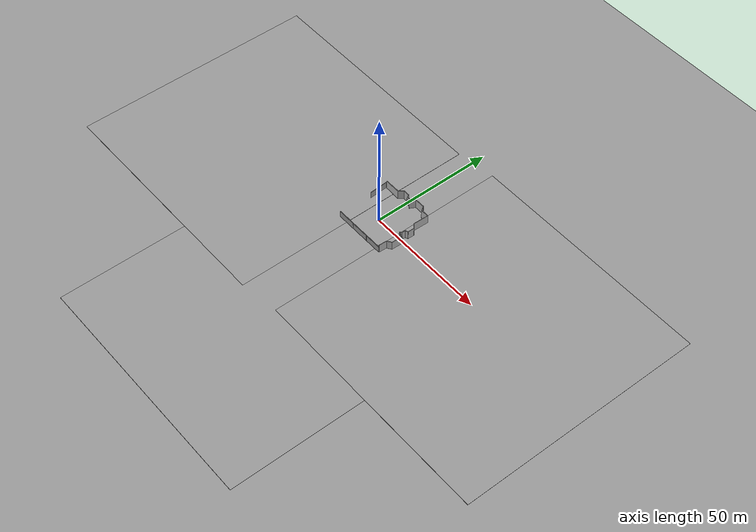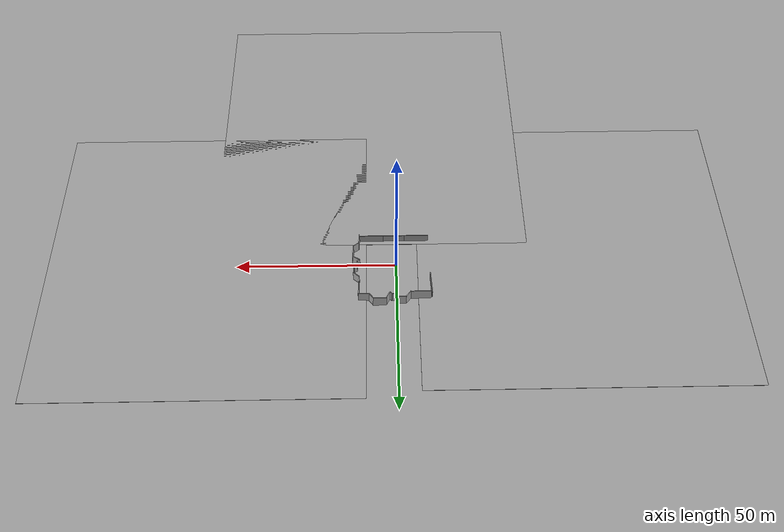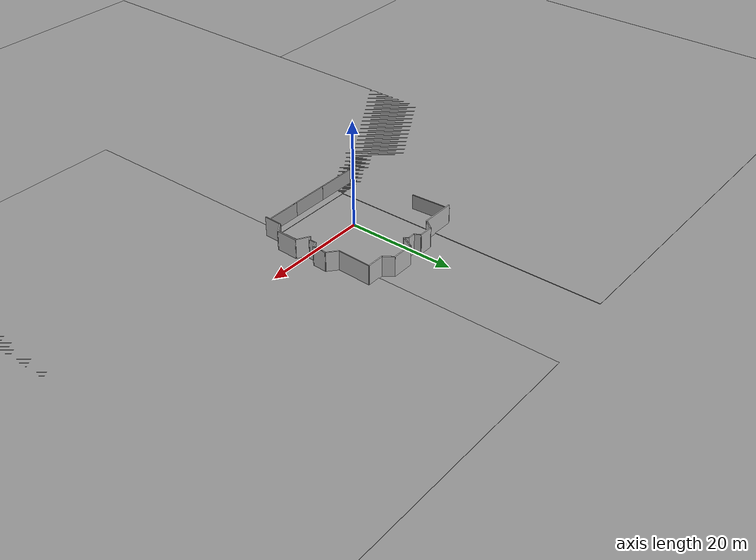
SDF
<sdf version="1.6">
 <world name="default">
  <light name="sun" type="directional">
   <pose>0 0 10 0 -0 0</pose>
   <diffuse>0.8 0.8 0.8 1</diffuse>
   <specular>0.1 0.1 0.1 1</specular>
   <attenuation>
    <range>1000</range>
    <constant>0.9</constant>
    <linear>0.01</linear>
    <quadratic>0.001</quadratic>
   </attenuation>
   <direction>-0.5 0.5 -1</direction>
  </light>
  <gravity>0 0 -9.8</gravity>
  <magnetic_field>6e-06 2.3e-05 -4.2e-05</magnetic_field>
  <atmosphere type="adiabatic"/>
  <physics name="default_physics" default="0" type="ode">
   <max_step_size>0.001</max_step_size>
   <real_time_factor>1</real_time_factor>
   <real_time_update_rate>1000</real_time_update_rate>
  </physics>
  <scene><ambient>0.4 0.4 0.4 1</ambient><background>0.7 0.7 0.7 1</background><shadows>1</shadows></scene>
  <spherical_coordinates>
   <surface_model>EARTH_WGS84</surface_model>
   <latitude_deg>0</latitude_deg>
   <longitude_deg>0</longitude_deg>
   <elevation>0</elevation>
   <heading_deg>0</heading_deg>
  </spherical_coordinates>
  <model name="ground_plane_1">
   <static>1</static>
   <link name="link">
    <collision name="collision">
     <geometry><plane><normal>0 0 1</normal><size>100 100</size></plane></geometry>
     <surface><friction><ode><mu>100</mu><mu2>50</mu2></ode></friction></surface>
    </collision>
    <visual name="visual">
     <cast_shadows>0</cast_shadows>
     <geometry><plane><normal>0 0 1</normal><size>100 100</size></plane></geometry>
     <material>
      <script><uri>file://media/materials/scripts/gazebo.material</uri><name>Gazebo/Grey</name></script>
     </material>
    </visual>
   </link>
   <pose>0.067592 59.7564 0 0 -0 0</pose>
  </model>
  <model name="deletion_wall">
   <static>1</static>
   <link name="sensing_link">
    <gravity>0</gravity>
    <sensor name="object_disposal_contact" type="contact">
     <update_rate>10</update_rate>
     <contact><collision>collision</collision><topic>__default_topic__</topic></contact>
    </sensor>
    <collision name="collision"><geometry><box><size>0.1 1 1</size></box></geometry></collision>
    <visual name="visual">
     <geometry><box><size>0.1 1 1</size></box></geometry>
     <cast_shadows>0</cast_shadows>
     <transparency>100</transparency>
    </visual>
   </link>
   <plugin name="object_disposal_plugin" filename="libObjectDisposalPlugin.so">
    <contact_sensor_name>object_disposal_contact</contact_sensor_name>
    <contact_side_normal>1 0 0</contact_side_normal>
    <disposal_pose>30 30 0 0 0 0</disposal_pose>
    <update_rate>5</update_rate>
   </plugin>
   <pose>18.7649 -0.246402 0 0 -0 0</pose>
  </model>
  <model name="sample_wall2">
   <link name="Wall_0">
    <collision name="Wall_0_Collision">
     <geometry><box><size>6.4 0.2 5</size></box></geometry>
     <pose>0 0 1.25 0 -0 0</pose>
    </collision>
    <visual name="Wall_0_Visual">
     <pose>0 0 1.25 0 -0 0</pose>
     <geometry><box><size>6.4 0.2 5</size></box></geometry>
     <material>
      <script>
       <uri>model://sample_wall2/materials/scripts</uri>
       <uri>model://sample_wall2/materials/textures</uri>
       <name>tex/wall</name>
      </script>
     </material>
    </visual>
    <pose>-6.74 -2.56 0 0 -0 0</pose>
   </link>
   <link name="Wall_1">
    <collision name="Wall_1_Collision">
     <geometry><box><size>2.44891 0.2 5</size></box></geometry>
     <pose>0 0 1.25 0 -0 0</pose>
    </collision>
    <visual name="Wall_1_Visual">
     <pose>0 0 1.25 0 -0 0</pose>
     <geometry><box><size>2.44891 0.2 5</size></box></geometry>
     <material>
      <script>
       <uri>model://sample_wall2/materials/scripts</uri>
       <uri>model://sample_wall2/materials/textures</uri>
       <name>tex/wall</name>
      </script>
     </material>
    </visual>
    <pose>-2.94 -1.68 0 0 -0 0.898833</pose>
   </link>
   <link name="Wall_12">
    <collision name="Wall_12_Collision">
     <geometry><box><size>3.4269 0.2 5</size></box></geometry>
     <pose>0 0 1.25 0 -0 0</pose>
    </collision>
    <visual name="Wall_12_Visual">
     <pose>0 0 1.25 0 -0 0</pose>
     <geometry><box><size>3.4269 0.2 5</size></box></geometry>
     <material>
      <script>
       <uri>model://sample_wall2/materials/scripts</uri>
       <uri>model://sample_wall2/materials/textures</uri>
       <name>tex/wall</name>
      </script>
     </material>
    </visual>
    <pose>10.7006 -1.98541 0 0 -0 0</pose>
   </link>
   <link name="Wall_2">
    <collision name="Wall_2_Collision">
     <geometry><box><size>2.75 0.2 5</size></box></geometry>
     <pose>0 0 1.25 0 -0 0</pose>
    </collision>
    <visual name="Wall_2_Visual">
     <pose>0 0 1.25 0 -0 0</pose>
     <geometry><box><size>2.75 0.2 5</size></box></geometry>
     <material>
      <script>
       <uri>model://sample_wall2/materials/scripts</uri>
       <uri>model://sample_wall2/materials/textures</uri>
       <name>tex/wall</name>
      </script>
     </material>
    </visual>
    <pose>-0.965 -0.8 0 0 -0 0</pose>
   </link>
   <link name="Wall_3">
    <collision name="Wall_3_Collision">
     <geometry><box><size>1.34948 0.2 5</size></box></geometry>
     <pose>0 0 1.25 0 -0 0</pose>
    </collision>
    <visual name="Wall_3_Visual">
     <pose>0 0 1.25 0 -0 0</pose>
     <geometry><box><size>1.34948 0.2 5</size></box></geometry>
     <material>
      <script>
       <uri>model://sample_wall2/materials/scripts</uri>
       <uri>model://sample_wall2/materials/textures</uri>
       <name>tex/wall</name>
      </script>
     </material>
    </visual>
    <pose>0.575 -1.31 0 0 0 -1.09159</pose>
   </link>
   <link name="Wall_4">
    <collision name="Wall_4_Collision">
     <geometry><box><size>1.53 0.2 5</size></box></geometry>
     <pose>0 0 1.25 0 -0 0</pose>
    </collision>
    <visual name="Wall_4_Visual">
     <pose>0 0 1.25 0 -0 0</pose>
     <geometry><box><size>1.53 0.2 5</size></box></geometry>
     <material>
      <script>
       <uri>model://sample_wall2/materials/scripts</uri>
       <uri>model://sample_wall2/materials/textures</uri>
       <name>tex/wall</name>
      </script>
     </material>
    </visual>
    <pose>1.505 -1.82 0 0 -0 0</pose>
   </link>
   <link name="Wall_5">
    <collision name="Wall_5_Collision">
     <geometry><box><size>1.06215 0.2 5</size></box></geometry>
     <pose>0 0 1.25 0 -0 0</pose>
    </collision>
    <visual name="Wall_5_Visual">
     <pose>0 0 1.25 0 -0 0</pose>
     <geometry><box><size>1.06215 0.2 5</size></box></geometry>
     <material>
      <script>
       <uri>model://sample_wall2/materials/scripts</uri>
       <uri>model://sample_wall2/materials/textures</uri>
       <name>tex/wall</name>
      </script>
     </material>
    </visual>
    <pose>2.435 -2.16 0 0 0 -0.908736</pose>
   </link>
   <link name="Wall_6">
    <collision name="Wall_6_Collision">
     <geometry><box><size>2.68767 0.2 5</size></box></geometry>
     <pose>0 0 1.25 0 -0 0</pose>
    </collision>
    <visual name="Wall_6_Visual">
     <pose>0 0 1.25 0 -0 0</pose>
     <geometry><box><size>2.68767 0.2 5</size></box></geometry>
     <material>
      <script>
       <uri>model://sample_wall2/materials/scripts</uri>
       <uri>model://sample_wall2/materials/textures</uri>
       <name>tex/wall</name>
      </script>
     </material>
    </visual>
    <pose>3.29 -1.405 0 0 -0 1.07658</pose>
   </link>
   <link name="Wall_8">
    <collision name="Wall_8_Collision">
     <geometry><box><size>4.15428 0.2 5</size></box></geometry>
     <pose>0 0 1.25 0 -0 0</pose>
    </collision>
    <visual name="Wall_8_Visual">
     <pose>0 0 1.25 0 -0 0</pose>
     <geometry><box><size>4.15428 0.2 5</size></box></geometry>
     <material>
      <script>
       <uri>model://sample_wall2/materials/scripts</uri>
       <uri>model://sample_wall2/materials/textures</uri>
       <name>tex/wall</name>
      </script>
     </material>
    </visual>
    <pose>5.86687 -0.292607 0 0 -0 0</pose>
   </link>
   <link name="Wall_9">
    <collision name="Wall_9_Collision">
     <geometry><box><size>2.2711 0.2 5</size></box></geometry>
     <pose>0 0 1.25 0 -0 0</pose>
    </collision>
    <visual name="Wall_9_Visual">
     <pose>0 0 1.25 0 -0 0</pose>
     <geometry><box><size>2.2711 0.2 5</size></box></geometry>
     <material>
      <script>
       <uri>model://sample_wall2/materials/scripts</uri>
       <uri>model://sample_wall2/materials/textures</uri>
       <name>tex/wall</name>
      </script>
     </material>
    </visual>
    <pose>8.45897 -1.12578 0 0 0 -0.934958</pose>
   </link>
   <static>1</static>
   <pose>-0.59993 14.848 0 0 -0 0</pose>
  </model>
  <model name="sample_wall2_0">
   <link name="Wall_0">
    <collision name="Wall_0_Collision">
     <geometry><box><size>6.4 0.2 5</size></box></geometry>
     <pose>0 0 1.25 0 -0 0</pose>
    </collision>
    <visual name="Wall_0_Visual">
     <pose>0 0 1.25 0 -0 0</pose>
     <geometry><box><size>6.4 0.2 5</size></box></geometry>
     <material>
      <script>
       <uri>model://sample_wall2/materials/scripts</uri>
       <uri>model://sample_wall2/materials/textures</uri>
       <name>tex/wall</name>
      </script>
     </material>
    </visual>
    <pose>-6.74 -2.56 0 0 -0 0</pose>
   </link>
   <link name="Wall_1">
    <collision name="Wall_1_Collision">
     <geometry><box><size>2.44891 0.2 5</size></box></geometry>
     <pose>0 0 1.25 0 -0 0</pose>
    </collision>
    <visual name="Wall_1_Visual">
     <pose>0 0 1.25 0 -0 0</pose>
     <geometry><box><size>2.44891 0.2 5</size></box></geometry>
     <material>
      <script>
       <uri>model://sample_wall2/materials/scripts</uri>
       <uri>model://sample_wall2/materials/textures</uri>
       <name>tex/wall</name>
      </script>
     </material>
    </visual>
    <pose>-2.94 -1.68 0 0 -0 0.898833</pose>
   </link>
   <link name="Wall_12">
    <collision name="Wall_12_Collision">
     <geometry><box><size>3.4269 0.2 5</size></box></geometry>
     <pose>0 0 1.25 0 -0 0</pose>
    </collision>
    <visual name="Wall_12_Visual">
     <pose>0 0 1.25 0 -0 0</pose>
     <geometry><box><size>3.4269 0.2 5</size></box></geometry>
     <material>
      <script>
       <uri>model://sample_wall2/materials/scripts</uri>
       <uri>model://sample_wall2/materials/textures</uri>
       <name>tex/wall</name>
      </script>
     </material>
    </visual>
    <pose>10.7006 -1.98541 0 0 -0 0</pose>
   </link>
   <link name="Wall_2">
    <collision name="Wall_2_Collision">
     <geometry><box><size>2.75 0.2 5</size></box></geometry>
     <pose>0 0 1.25 0 -0 0</pose>
    </collision>
    <visual name="Wall_2_Visual">
     <pose>0 0 1.25 0 -0 0</pose>
     <geometry><box><size>2.75 0.2 5</size></box></geometry>
     <material>
      <script>
       <uri>model://sample_wall2/materials/scripts</uri>
       <uri>model://sample_wall2/materials/textures</uri>
       <name>tex/wall</name>
      </script>
     </material>
    </visual>
    <pose>-0.965 -0.8 0 0 -0 0</pose>
   </link>
   <link name="Wall_3">
    <collision name="Wall_3_Collision">
     <geometry><box><size>1.34948 0.2 5</size></box></geometry>
     <pose>0 0 1.25 0 -0 0</pose>
    </collision>
    <visual name="Wall_3_Visual">
     <pose>0 0 1.25 0 -0 0</pose>
     <geometry><box><size>1.34948 0.2 5</size></box></geometry>
     <material>
      <script>
       <uri>model://sample_wall2/materials/scripts</uri>
       <uri>model://sample_wall2/materials/textures</uri>
       <name>tex/wall</name>
      </script>
     </material>
    </visual>
    <pose>0.575 -1.31 0 0 0 -1.09159</pose>
   </link>
   <link name="Wall_4">
    <collision name="Wall_4_Collision">
     <geometry><box><size>1.53 0.2 5</size></box></geometry>
     <pose>0 0 1.25 0 -0 0</pose>
    </collision>
    <visual name="Wall_4_Visual">
     <pose>0 0 1.25 0 -0 0</pose>
     <geometry><box><size>1.53 0.2 5</size></box></geometry>
     <material>
      <script>
       <uri>model://sample_wall2/materials/scripts</uri>
       <uri>model://sample_wall2/materials/textures</uri>
       <name>tex/wall</name>
      </script>
     </material>
    </visual>
    <pose>1.505 -1.82 0 0 -0 0</pose>
   </link>
   <link name="Wall_5">
    <collision name="Wall_5_Collision">
     <geometry><box><size>1.06215 0.2 5</size></box></geometry>
     <pose>0 0 1.25 0 -0 0</pose>
    </collision>
    <visual name="Wall_5_Visual">
     <pose>0 0 1.25 0 -0 0</pose>
     <geometry><box><size>1.06215 0.2 5</size></box></geometry>
     <material>
      <script>
       <uri>model://sample_wall2/materials/scripts</uri>
       <uri>model://sample_wall2/materials/textures</uri>
       <name>tex/wall</name>
      </script>
     </material>
    </visual>
    <pose>2.435 -2.16 0 0 0 -0.908736</pose>
   </link>
   <link name="Wall_6">
    <collision name="Wall_6_Collision">
     <geometry><box><size>2.68767 0.2 5</size></box></geometry>
     <pose>0 0 1.25 0 -0 0</pose>
    </collision>
    <visual name="Wall_6_Visual">
     <pose>0 0 1.25 0 -0 0</pose>
     <geometry><box><size>2.68767 0.2 5</size></box></geometry>
     <material>
      <script>
       <uri>model://sample_wall2/materials/scripts</uri>
       <uri>model://sample_wall2/materials/textures</uri>
       <name>tex/wall</name>
      </script>
     </material>
    </visual>
    <pose>3.29 -1.405 0 0 -0 1.07658</pose>
   </link>
   <link name="Wall_8">
    <collision name="Wall_8_Collision">
     <geometry><box><size>4.15428 0.2 5</size></box></geometry>
     <pose>0 0 1.25 0 -0 0</pose>
    </collision>
    <visual name="Wall_8_Visual">
     <pose>0 0 1.25 0 -0 0</pose>
     <geometry><box><size>4.15428 0.2 5</size></box></geometry>
     <material>
      <script>
       <uri>model://sample_wall2/materials/scripts</uri>
       <uri>model://sample_wall2/materials/textures</uri>
       <name>tex/wall</name>
      </script>
     </material>
    </visual>
    <pose>5.86687 -0.292607 0 0 -0 0</pose>
   </link>
   <link name="Wall_9">
    <collision name="Wall_9_Collision">
     <geometry><box><size>2.2711 0.2 5</size></box></geometry>
     <pose>0 0 1.25 0 -0 0</pose>
    </collision>
    <visual name="Wall_9_Visual">
     <pose>0 0 1.25 0 -0 0</pose>
     <geometry><box><size>2.2711 0.2 5</size></box></geometry>
     <material>
      <script>
       <uri>model://sample_wall2/materials/scripts</uri>
       <uri>model://sample_wall2/materials/textures</uri>
       <name>tex/wall</name>
      </script>
     </material>
    </visual>
    <pose>8.45897 -1.12578 0 0 0 -0.934958</pose>
   </link>
   <static>1</static>
   <pose>13.9888 2.82951 0 0 0 -1.60556</pose>
  </model>
  <model name="ground_plane_3">
   <static>1</static>
   <link name="link">
    <collision name="collision">
     <geometry><plane><normal>0 0 1</normal><size>100 100</size></plane></geometry>
     <surface><friction><ode><mu>100</mu><mu2>50</mu2></ode></friction></surface>
    </collision>
    <visual name="visual">
     <cast_shadows>0</cast_shadows>
     <geometry><plane><normal>0 0 1</normal><size>100 100</size></plane></geometry>
     <material>
      <script><uri>file://media/materials/scripts/gazebo.material</uri><name>Gazebo/Grey</name></script>
     </material>
    </visual>
   </link>
   <pose>59.3676 -3.64577 0 0 -0 0</pose>
  </model>
  <model name="ground_plane_4">
   <static>1</static>
   <link name="link">
    <collision name="collision">
     <geometry><plane><normal>0 0 1</normal><size>100 100</size></plane></geometry>
     <surface><friction><ode><mu>100</mu><mu2>50</mu2></ode></friction></surface>
    </collision>
    <visual name="visual">
     <cast_shadows>0</cast_shadows>
     <geometry><plane><normal>0 0 1</normal><size>100 100</size></plane></geometry>
     <material>
      <script><uri>file://media/materials/scripts/gazebo.material</uri><name>Gazebo/Grey</name></script>
     </material>
    </visual>
   </link>
   <pose>8.09361 -58.0803 0 0 -0 0</pose>
  </model>
  <model name="ground_plane_5">
   <static>1</static>
   <link name="link">
    <collision name="collision">
     <geometry><plane><normal>0 0 1</normal><size>100 100</size></plane></geometry>
     <surface><friction><ode><mu>100</mu><mu2>50</mu2></ode></friction></surface>
    </collision>
    <visual name="visual">
     <cast_shadows>0</cast_shadows>
     <geometry><plane><normal>0 0 1</normal><size>100 100</size></plane></geometry>
     <material>
      <script><uri>file://media/materials/scripts/gazebo.material</uri><name>Gazebo/Grey</name></script>
     </material>
    </visual>
   </link>
   <pose>-56.6619 -5.89121 0 0 -0 0</pose>
  </model>
  <model name="grey_wall">
   <static>1</static>
   <link name="link">
    <pose>0 0 1.4 0 -0 0</pose>
    <collision name="collision"><geometry><box><size>7.5 0.2 2.8</size></box></geometry></collision>
    <visual name="visual">
     <cast_shadows>0</cast_shadows>
     <geometry><box><size>7.5 0.2 2.8</size></box></geometry>
     <material>
      <script>
       <uri>model://grey_wall/materials/scripts</uri>
       <uri>model://grey_wall/materials/textures</uri>
       <name>vrc/grey_wall</name>
      </script>
     </material>
    </visual>
   </link>
   <pose>7.77636 -9.52538 0 0 -0 0</pose>
  </model>
  <model name="grey_wall_clone">
   <static>1</static>
   <link name="link">
    <pose>0 0 1.4 0 -0 0</pose>
    <collision name="collision"><geometry><box><size>7.5 0.2 2.8</size></box></geometry></collision>
    <visual name="visual">
     <cast_shadows>0</cast_shadows>
     <geometry><box><size>7.5 0.2 2.8</size></box></geometry>
     <material>
      <script>
       <uri>model://grey_wall/materials/scripts</uri>
       <uri>model://grey_wall/materials/textures</uri>
       <name>vrc/grey_wall</name>
      </script>
     </material>
    </visual>
   </link>
   <pose>0.840672 -9.54261 0 0 -0 0</pose>
  </model>
  <model name="grey_wall_clone_0">
   <static>1</static>
   <link name="link">
    <pose>0 0 1.4 0 -0 0</pose>
    <collision name="collision"><geometry><box><size>7.5 0.2 2.8</size></box></geometry></collision>
    <visual name="visual">
     <cast_shadows>0</cast_shadows>
     <geometry><box><size>7.5 0.2 2.8</size></box></geometry>
     <material>
      <script>
       <uri>model://grey_wall/materials/scripts</uri>
       <uri>model://grey_wall/materials/textures</uri>
       <name>vrc/grey_wall</name>
      </script>
     </material>
    </visual>
   </link>
   <pose>-6.52853 -9.53234 0 0 -0 0</pose>
  </model>
  <model name="grey_wall_clone_0_clone">
   <static>1</static>
   <link name="link">
    <pose>0 0 1.4 0 -0 0</pose>
    <collision name="collision"><geometry><box><size>7.5 0.2 2.8</size></box></geometry></collision>
    <visual name="visual">
     <cast_shadows>0</cast_shadows>
     <geometry><box><size>7.5 0.2 2.8</size></box></geometry>
     <material>
      <script>
       <uri>model://grey_wall/materials/scripts</uri>
       <uri>model://grey_wall/materials/textures</uri>
       <name>vrc/grey_wall</name>
      </script>
     </material>
    </visual>
   </link>
   <pose>-10.6816 8.4144 0 0 0 -1.52045</pose>
  </model>
 </world>
</sdf>
